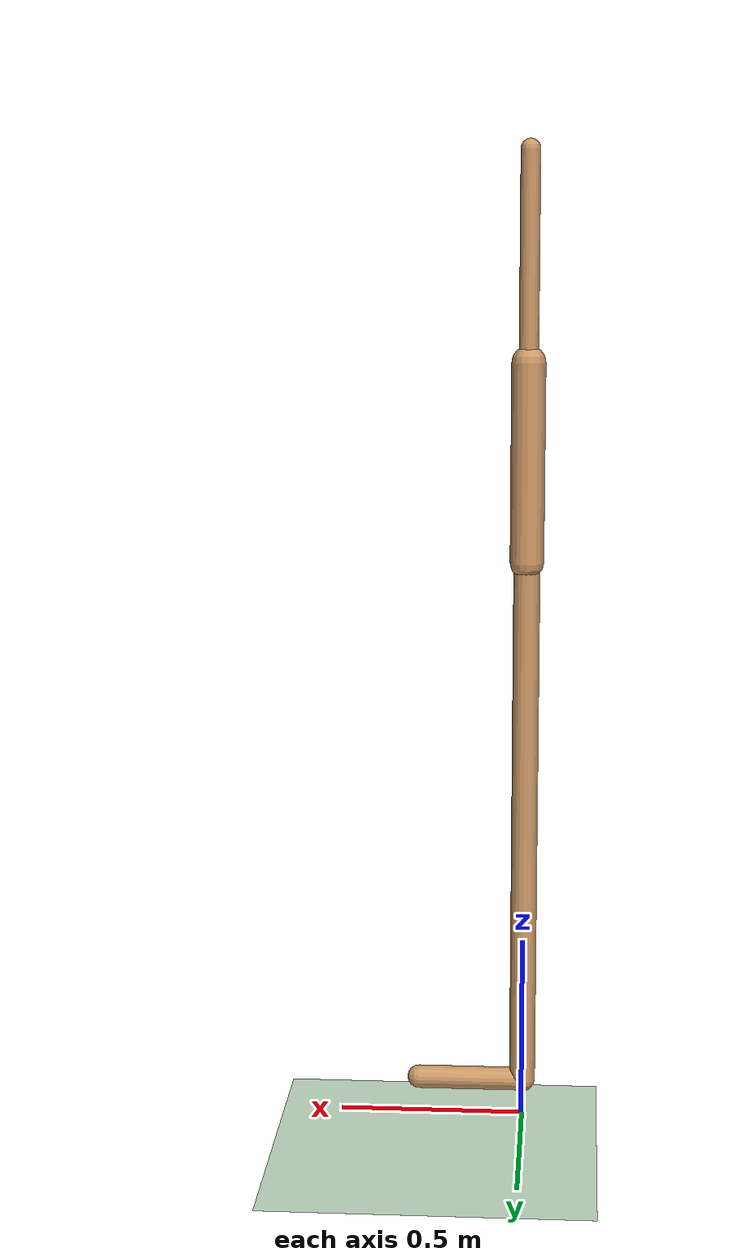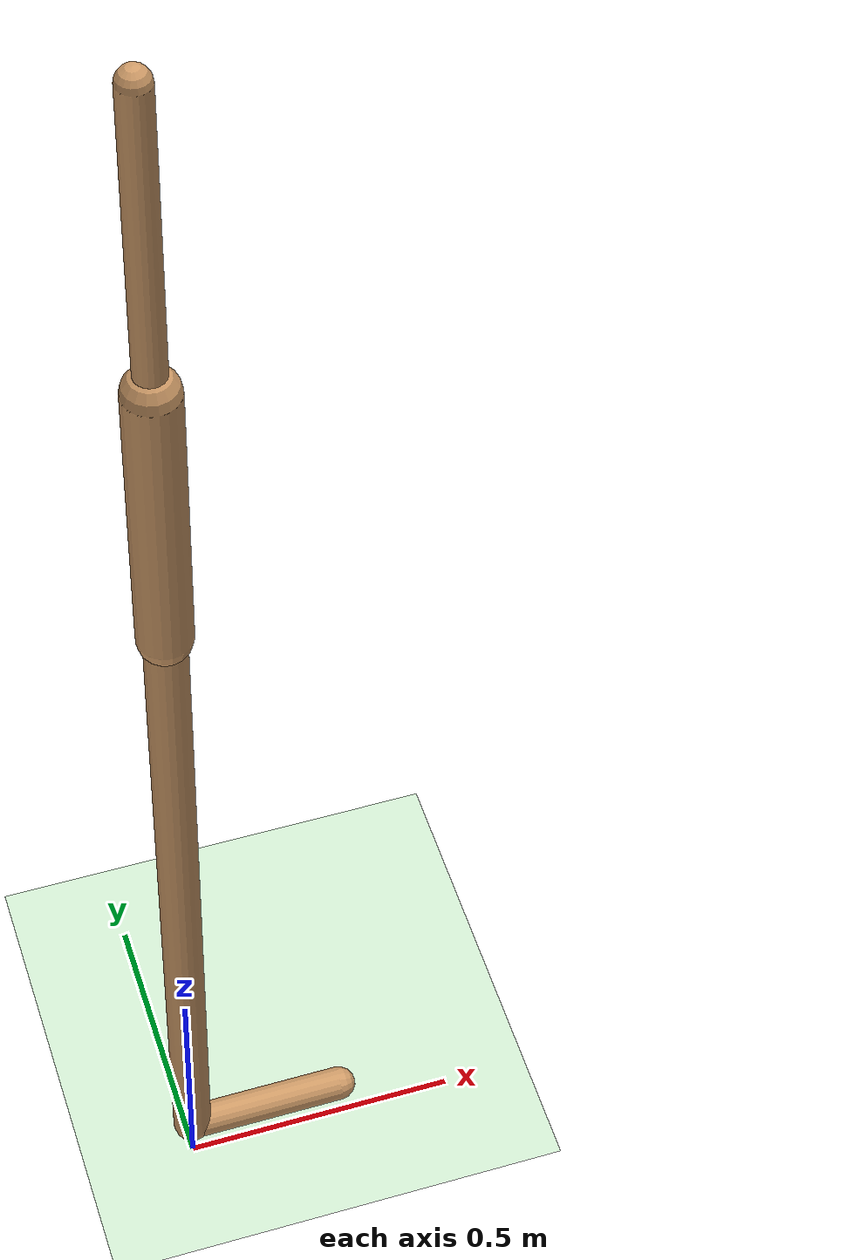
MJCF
<mujoco model="walker2d">
  <compiler angle="degree" inertiafromgeom="true" />
  <default>
    <joint armature="0.01" damping=".1" limited="true" />
    <geom conaffinity="0" condim="3" contype="1" density="1000" friction=".7 .1 .1" rgba="0.8 0.6 .4 1" />
  </default>
  <option integrator="RK4" timestep="0.002" />
  <worldbody>
    <light cutoff="100" diffuse="1 1 1" dir="-0 0 -1.3" directional="true" exponent="1" pos="0 0 1.3" specular=".1 .1 .1" />
    <geom conaffinity="1" condim="3" name="floor" pos="0 0 0" rgba="0.8 0.9 0.8 1" size="40 40 40" type="plane" material="MatPlane" />
    <body name="torso" pos="0 0 2.3469605803489686">
      <camera name="track" mode="trackcom" pos="0 -5 -1.25" xyaxes="1 0 0 0 0 1" />
      <joint armature="0" axis="1 0 0" damping="0" limited="false" name="rootx" pos="0 0 -1.25" stiffness="0" type="slide" />
      <joint armature="0" axis="0 0 1" damping="0" limited="false" name="rootz" pos="0 0 -1.25" ref="1.25" stiffness="0" type="slide" />
      <joint armature="0" axis="0 1 0" damping="0" limited="false" name="rooty" pos="0 0 0" stiffness="0" type="hinge" />
      <geom friction="0.9" name="torso_geom" size="0.02538364753127098 0.27129560708999634" type="capsule" />
      <body name="thigh" pos="0 0 -0.27129560708999634">
        <joint axis="0 -1 0" name="thigh_joint" pos="0 0 0" range="-150 0" type="hinge" />
        <site name="torso_thigh_site" pos="0 0 0" size="0.01" type="sphere" rgba="1 0 0 0.5" />
        <geom friction="0.9" pos="0 0 -0.26273655891418457" name="thigh_geom" size="0.04462585598230362 0.26273655891418457" type="capsule" />
        <body name="leg" pos="0 0 -1.2505690455436707">
          <joint axis="0 -1 0" name="leg_joint" pos="0 0 0.7250959277153015" range="-150 0" type="hinge" />
          <site name="thigh_leg_site" pos="0 0 0.25" size="0.01" type="sphere" rgba="1 0 0 0.5" />
          <geom friction="0.9" name="leg_geom" size="0.034723829478025436 0.7250959277153015" type="capsule" />
          <body name="foot" pos="0.2854422926902771 0 -0.8250959277153015">
            <joint axis="0 -1 0" name="foot_joint" pos="-0.2854422926902771 0 0.1" range="-45 45" type="hinge" />
            <site name="leg_foot_site" pos="-0.2 0 0.1" size="0.01" type="sphere" rgba="1 0 0 0.5" />
            <geom friction="0.9" pos="-0.14272114634513855 0 0.1" quat="0.70710678118654757 0 -0.70710678118654746 0" name="foot_geom" size="0.031235432252287865 0.14272114634513855" type="capsule" />
          </body>
        </body>
      </body>

      <body name="thigh_left" pos="0 0 -0.27129560708999634">
        <joint axis="0 -1 0" name="thigh_left_joint" pos="0 0 0" range="-150 0" type="hinge" />
        <site name="torso_thigh_left_site" pos="0 0 0" size="0.01" type="sphere" rgba="1 0 0 0.5" />
        <geom friction="0.9" name="thigh_left_geom" rgba=".7 .3 .6 1" size="0.04462585598230362 0.26273655891418457" pos="0 0 -0.26273655891418457" type="capsule" />
        <body name="leg_left" pos="0 0 -1.2505690455436707">
          <joint axis="0 -1 0" name="leg_left_joint" pos="0 0 0.7250959277153015" range="-150 0" type="hinge" />
          <site name="thigh_leg_left_site" pos="0 0 0.25" size="0.01" type="sphere" rgba="1 0 0 0.5" />
          <geom friction="0.9" name="leg_left_geom" rgba=".7 .3 .6 1" size="0.034723829478025436 0.7250959277153015" type="capsule" />
          <body name="foot_left" pos="0.2854422926902771 0 -0.8250959277153015">
            <joint axis="0 -1 0" name="foot_left_joint" pos="-0.2854422926902771 0 0.1" range="-45 45" type="hinge" />
            <site name="leg_foot_left_site" pos="-0.2 0 0.1" size="0.01" type="sphere" rgba="1 0 0 0.5" />
            <geom friction="1.9" name="foot_left_geom" rgba=".7 .3 .6 1" size="0.031235432252287865 0.14272114634513855" pos="-0.14272114634513855 0 0.1" type="capsule" quat="0.70710678118654757 0 -0.70710678118654746 0" />
          </body>
        </body>
      </body>
    </body>
  </worldbody>
  <actuator>

    <motor ctrllimited="true" ctrlrange="-1.0 1.0" gear="93.01887868295769" joint="thigh_joint" />
    <motor ctrllimited="true" ctrlrange="-1.0 1.0" gear="218.5700765432321" joint="leg_joint" />
    <motor ctrllimited="true" ctrlrange="-1.0 1.0" gear="38.67950122570303" joint="foot_joint" />
    <motor ctrllimited="true" ctrlrange="-1.0 1.0" gear="93.01887868295769" joint="thigh_left_joint" />
    <motor ctrllimited="true" ctrlrange="-1.0 1.0" gear="218.5700765432321" joint="leg_left_joint" />
    <motor ctrllimited="true" ctrlrange="-1.0 1.0" gear="38.67950122570303" joint="foot_left_joint" />

  </actuator>
    <asset>
        <texture type="skybox" builtin="gradient" rgb1=".4 .5 .6" rgb2="0 0 0" width="100" height="100" />
        <texture builtin="flat" height="1278" mark="cross" markrgb="1 1 1" name="texgeom" random="0.01" rgb1="0.8 0.6 0.4" rgb2="0.8 0.6 0.4" type="cube" width="127" />
        <texture builtin="checker" height="100" name="texplane" rgb1="0 0 0" rgb2="0.8 0.8 0.8" type="2d" width="100" />
        <material name="MatPlane" reflectance="0.5" shininess="1" specular="1" texrepeat="60 60" texture="texplane" />
        <material name="geom" texture="texgeom" texuniform="true" />
    </asset>

  <sensor>
    <force site="torso_thigh_site" name="torso_thigh_sensor" />
    <force site="thigh_leg_site" name="thigh_leg_sensor" />
    <force site="leg_foot_site" name="leg_foot_sensor" />
    <force site="torso_thigh_left_site" name="torso_thigh_left_sensor" />
    <force site="thigh_leg_left_site" name="thigh_leg_left_sensor" />
    <force site="leg_foot_left_site" name="leg_foot_left_sensor" />
  </sensor>
</mujoco>
